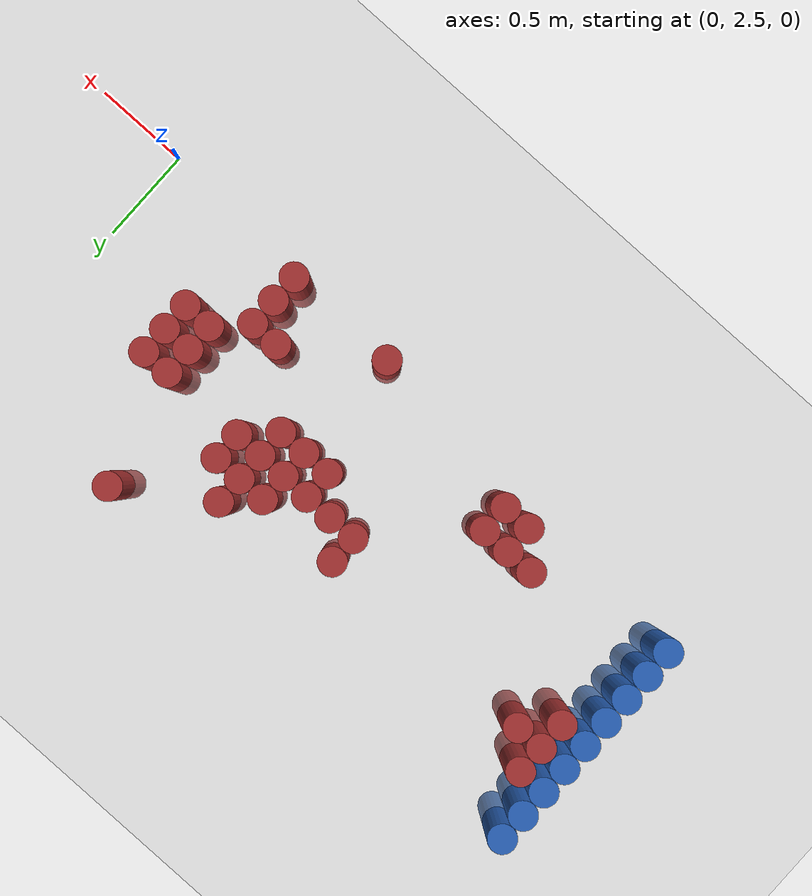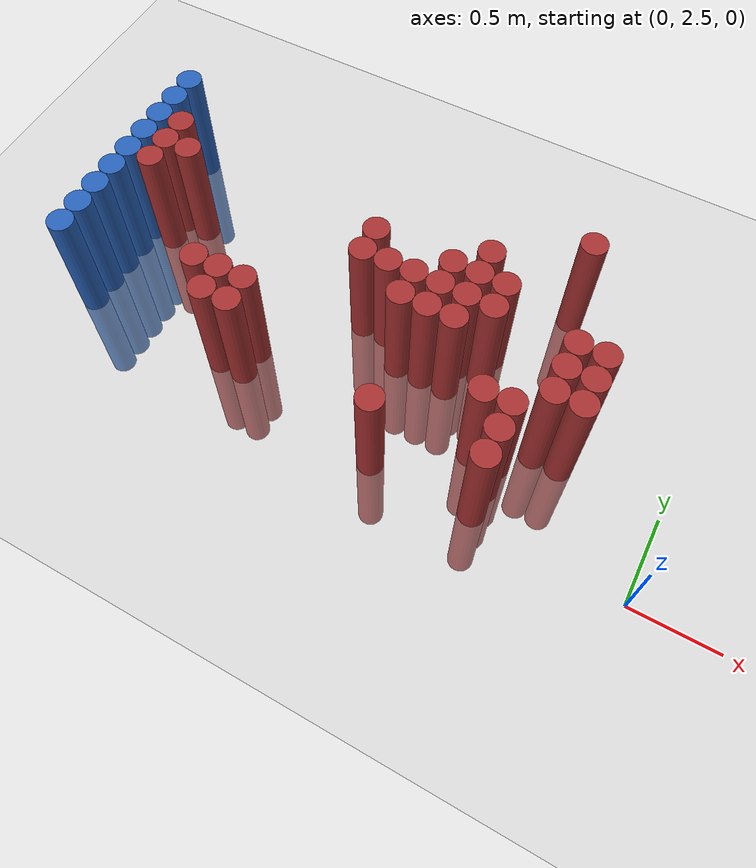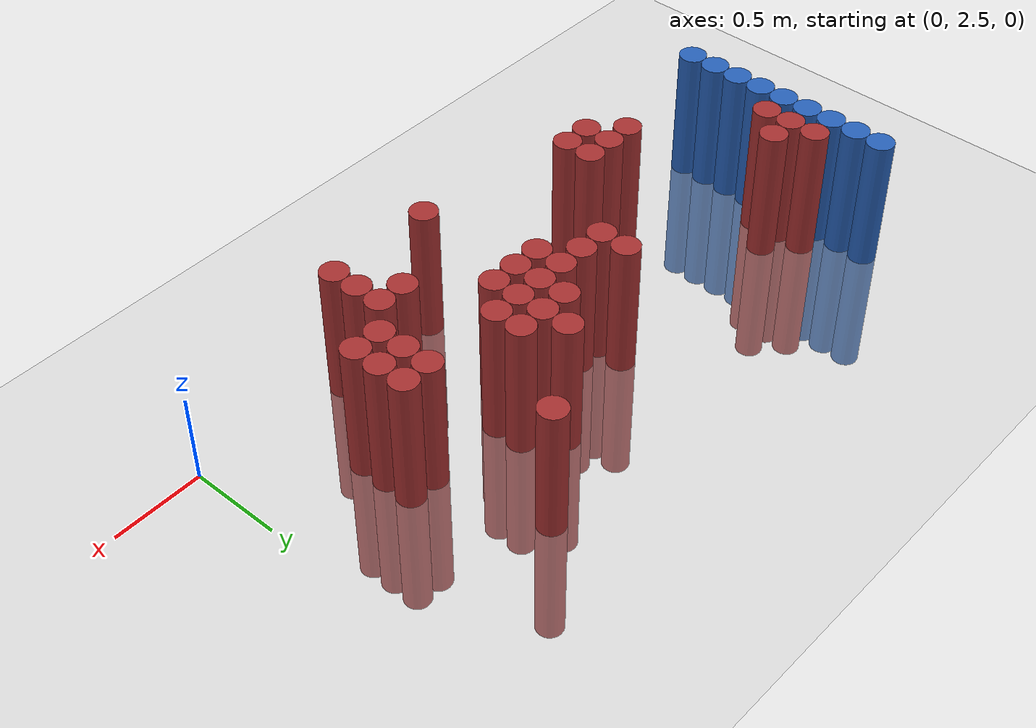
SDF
<sdf version="1.6">
 <world name="default">
  <model name="ground_plane">
   <static>1</static>
   <link name="link">
    <collision name="collision">
     <geometry><plane><normal>0 0 1</normal><size>100 100</size></plane></geometry>
     <surface><friction><ode><mu>100</mu><mu2>50</mu2></ode></friction></surface>
    </collision>
    <visual name="visual">
     <cast_shadows>0</cast_shadows>
     <geometry><plane><normal>0 0 1</normal><size>100 100</size></plane></geometry>
     <material>
      <script><uri>file://media/materials/scripts/gazebo.material</uri><name>Gazebo/Grey</name></script>
     </material>
    </visual>
   </link>
  </model>
  <model name="unit_cylinder_151">
   <static>1</static>
   <pose>-3.425000 2.725000 0.000000 0.000000 0.000000 0.000000</pose>
   <link name="link">
    <inertial>
     <mass>1</mass>
     <inertia><ixx>0.145833</ixx><ixy>0</ixy><ixz>0</ixz><iyy>0.145833</iyy><iyz>0</iyz><izz>0.125</izz></inertia>
    </inertial>
    <collision name="collision">
     <geometry><cylinder><radius>0.075000</radius><length>1.5</length></cylinder></geometry>
    </collision>
    <visual name="visual">
     <geometry><cylinder><radius>0.075000</radius><length>1.5</length></cylinder></geometry>
     <material>
      <ambient>0.152000 0.379000 0.720000 1</ambient>
      <diffuse>0.152000 0.379000 0.720000 1</diffuse>
     </material>
     <material>
      <script><name>Gazebo/Grey</name><uri>file://media/materials/scripts/gazebo.material</uri></script>
     </material>
    </visual>
   </link>
  </model>
  <model name="unit_cylinder_153">
   <static>1</static>
   <pose>-3.425000 2.875000 0.000000 0.000000 0.000000 0.000000</pose>
   <link name="link">
    <inertial>
     <mass>1</mass>
     <inertia><ixx>0.145833</ixx><ixy>0</ixy><ixz>0</ixz><iyy>0.145833</iyy><iyz>0</iyz><izz>0.125</izz></inertia>
    </inertial>
    <collision name="collision">
     <geometry><cylinder><radius>0.075000</radius><length>1.5</length></cylinder></geometry>
    </collision>
    <visual name="visual">
     <geometry><cylinder><radius>0.075000</radius><length>1.5</length></cylinder></geometry>
     <material>
      <ambient>0.152000 0.379000 0.720000 1</ambient>
      <diffuse>0.152000 0.379000 0.720000 1</diffuse>
     </material>
     <material>
      <script><name>Gazebo/Grey</name><uri>file://media/materials/scripts/gazebo.material</uri></script>
     </material>
    </visual>
   </link>
  </model>
  <model name="unit_cylinder_155">
   <static>1</static>
   <pose>-3.425000 3.025000 0.000000 0.000000 0.000000 0.000000</pose>
   <link name="link">
    <inertial>
     <mass>1</mass>
     <inertia><ixx>0.145833</ixx><ixy>0</ixy><ixz>0</ixz><iyy>0.145833</iyy><iyz>0</iyz><izz>0.125</izz></inertia>
    </inertial>
    <collision name="collision">
     <geometry><cylinder><radius>0.075000</radius><length>1.5</length></cylinder></geometry>
    </collision>
    <visual name="visual">
     <geometry><cylinder><radius>0.075000</radius><length>1.5</length></cylinder></geometry>
     <material>
      <ambient>0.152000 0.379000 0.720000 1</ambient>
      <diffuse>0.152000 0.379000 0.720000 1</diffuse>
     </material>
     <material>
      <script><name>Gazebo/Grey</name><uri>file://media/materials/scripts/gazebo.material</uri></script>
     </material>
    </visual>
   </link>
  </model>
  <model name="unit_cylinder_157">
   <static>1</static>
   <pose>-3.425000 3.175000 0.000000 0.000000 0.000000 0.000000</pose>
   <link name="link">
    <inertial>
     <mass>1</mass>
     <inertia><ixx>0.145833</ixx><ixy>0</ixy><ixz>0</ixz><iyy>0.145833</iyy><iyz>0</iyz><izz>0.125</izz></inertia>
    </inertial>
    <collision name="collision">
     <geometry><cylinder><radius>0.075000</radius><length>1.5</length></cylinder></geometry>
    </collision>
    <visual name="visual">
     <geometry><cylinder><radius>0.075000</radius><length>1.5</length></cylinder></geometry>
     <material>
      <ambient>0.152000 0.379000 0.720000 1</ambient>
      <diffuse>0.152000 0.379000 0.720000 1</diffuse>
     </material>
     <material>
      <script><name>Gazebo/Grey</name><uri>file://media/materials/scripts/gazebo.material</uri></script>
     </material>
    </visual>
   </link>
  </model>
  <model name="unit_cylinder_159">
   <static>1</static>
   <pose>-3.425000 3.325000 0.000000 0.000000 0.000000 0.000000</pose>
   <link name="link">
    <inertial>
     <mass>1</mass>
     <inertia><ixx>0.145833</ixx><ixy>0</ixy><ixz>0</ixz><iyy>0.145833</iyy><iyz>0</iyz><izz>0.125</izz></inertia>
    </inertial>
    <collision name="collision">
     <geometry><cylinder><radius>0.075000</radius><length>1.5</length></cylinder></geometry>
    </collision>
    <visual name="visual">
     <geometry><cylinder><radius>0.075000</radius><length>1.5</length></cylinder></geometry>
     <material>
      <ambient>0.152000 0.379000 0.720000 1</ambient>
      <diffuse>0.152000 0.379000 0.720000 1</diffuse>
     </material>
     <material>
      <script><name>Gazebo/Grey</name><uri>file://media/materials/scripts/gazebo.material</uri></script>
     </material>
    </visual>
   </link>
  </model>
  <model name="unit_cylinder_161">
   <static>1</static>
   <pose>-3.425000 3.475000 0.000000 0.000000 0.000000 0.000000</pose>
   <link name="link">
    <inertial>
     <mass>1</mass>
     <inertia><ixx>0.145833</ixx><ixy>0</ixy><ixz>0</ixz><iyy>0.145833</iyy><iyz>0</iyz><izz>0.125</izz></inertia>
    </inertial>
    <collision name="collision">
     <geometry><cylinder><radius>0.075000</radius><length>1.5</length></cylinder></geometry>
    </collision>
    <visual name="visual">
     <geometry><cylinder><radius>0.075000</radius><length>1.5</length></cylinder></geometry>
     <material>
      <ambient>0.152000 0.379000 0.720000 1</ambient>
      <diffuse>0.152000 0.379000 0.720000 1</diffuse>
     </material>
     <material>
      <script><name>Gazebo/Grey</name><uri>file://media/materials/scripts/gazebo.material</uri></script>
     </material>
    </visual>
   </link>
  </model>
  <model name="unit_cylinder_163">
   <static>1</static>
   <pose>-3.425000 3.625000 0.000000 0.000000 0.000000 0.000000</pose>
   <link name="link">
    <inertial>
     <mass>1</mass>
     <inertia><ixx>0.145833</ixx><ixy>0</ixy><ixz>0</ixz><iyy>0.145833</iyy><iyz>0</iyz><izz>0.125</izz></inertia>
    </inertial>
    <collision name="collision">
     <geometry><cylinder><radius>0.075000</radius><length>1.5</length></cylinder></geometry>
    </collision>
    <visual name="visual">
     <geometry><cylinder><radius>0.075000</radius><length>1.5</length></cylinder></geometry>
     <material>
      <ambient>0.152000 0.379000 0.720000 1</ambient>
      <diffuse>0.152000 0.379000 0.720000 1</diffuse>
     </material>
     <material>
      <script><name>Gazebo/Grey</name><uri>file://media/materials/scripts/gazebo.material</uri></script>
     </material>
    </visual>
   </link>
  </model>
  <model name="unit_cylinder_165">
   <static>1</static>
   <pose>-3.425000 3.775000 0.000000 0.000000 0.000000 0.000000</pose>
   <link name="link">
    <inertial>
     <mass>1</mass>
     <inertia><ixx>0.145833</ixx><ixy>0</ixy><ixz>0</ixz><iyy>0.145833</iyy><iyz>0</iyz><izz>0.125</izz></inertia>
    </inertial>
    <collision name="collision">
     <geometry><cylinder><radius>0.075000</radius><length>1.5</length></cylinder></geometry>
    </collision>
    <visual name="visual">
     <geometry><cylinder><radius>0.075000</radius><length>1.5</length></cylinder></geometry>
     <material>
      <ambient>0.152000 0.379000 0.720000 1</ambient>
      <diffuse>0.152000 0.379000 0.720000 1</diffuse>
     </material>
     <material>
      <script><name>Gazebo/Grey</name><uri>file://media/materials/scripts/gazebo.material</uri></script>
     </material>
    </visual>
   </link>
  </model>
  <model name="unit_cylinder_167">
   <static>1</static>
   <pose>-3.425000 3.925000 0.000000 0.000000 0.000000 0.000000</pose>
   <link name="link">
    <inertial>
     <mass>1</mass>
     <inertia><ixx>0.145833</ixx><ixy>0</ixy><ixz>0</ixz><iyy>0.145833</iyy><iyz>0</iyz><izz>0.125</izz></inertia>
    </inertial>
    <collision name="collision">
     <geometry><cylinder><radius>0.075000</radius><length>1.5</length></cylinder></geometry>
    </collision>
    <visual name="visual">
     <geometry><cylinder><radius>0.075000</radius><length>1.5</length></cylinder></geometry>
     <material>
      <ambient>0.152000 0.379000 0.720000 1</ambient>
      <diffuse>0.152000 0.379000 0.720000 1</diffuse>
     </material>
     <material>
      <script><name>Gazebo/Grey</name><uri>file://media/materials/scripts/gazebo.material</uri></script>
     </material>
    </visual>
   </link>
  </model>
  <model name="unit_cylinder_239">
   <static>1</static>
   <pose>-3.425000 2.725000 0.000000 0.000000 0.000000 0.000000</pose>
   <link name="link">
    <inertial>
     <mass>1</mass>
     <inertia><ixx>0.145833</ixx><ixy>0</ixy><ixz>0</ixz><iyy>0.145833</iyy><iyz>0</iyz><izz>0.125</izz></inertia>
    </inertial>
    <collision name="collision">
     <geometry><cylinder><radius>0.075000</radius><length>1.5</length></cylinder></geometry>
    </collision>
    <visual name="visual">
     <geometry><cylinder><radius>0.075000</radius><length>1.5</length></cylinder></geometry>
     <material>
      <ambient>0.152000 0.379000 0.720000 1</ambient>
      <diffuse>0.152000 0.379000 0.720000 1</diffuse>
     </material>
     <material>
      <script><name>Gazebo/Grey</name><uri>file://media/materials/scripts/gazebo.material</uri></script>
     </material>
    </visual>
   </link>
  </model>
  <model name="unit_cylinder_240">
   <static>1</static>
   <pose>-3.425000 2.875000 0.000000 0.000000 0.000000 0.000000</pose>
   <link name="link">
    <inertial>
     <mass>1</mass>
     <inertia><ixx>0.145833</ixx><ixy>0</ixy><ixz>0</ixz><iyy>0.145833</iyy><iyz>0</iyz><izz>0.125</izz></inertia>
    </inertial>
    <collision name="collision">
     <geometry><cylinder><radius>0.075000</radius><length>1.5</length></cylinder></geometry>
    </collision>
    <visual name="visual">
     <geometry><cylinder><radius>0.075000</radius><length>1.5</length></cylinder></geometry>
     <material>
      <ambient>0.152000 0.379000 0.720000 1</ambient>
      <diffuse>0.152000 0.379000 0.720000 1</diffuse>
     </material>
     <material>
      <script><name>Gazebo/Grey</name><uri>file://media/materials/scripts/gazebo.material</uri></script>
     </material>
    </visual>
   </link>
  </model>
  <model name="unit_cylinder_241">
   <static>1</static>
   <pose>-3.425000 3.025000 0.000000 0.000000 0.000000 0.000000</pose>
   <link name="link">
    <inertial>
     <mass>1</mass>
     <inertia><ixx>0.145833</ixx><ixy>0</ixy><ixz>0</ixz><iyy>0.145833</iyy><iyz>0</iyz><izz>0.125</izz></inertia>
    </inertial>
    <collision name="collision">
     <geometry><cylinder><radius>0.075000</radius><length>1.5</length></cylinder></geometry>
    </collision>
    <visual name="visual">
     <geometry><cylinder><radius>0.075000</radius><length>1.5</length></cylinder></geometry>
     <material>
      <ambient>0.152000 0.379000 0.720000 1</ambient>
      <diffuse>0.152000 0.379000 0.720000 1</diffuse>
     </material>
     <material>
      <script><name>Gazebo/Grey</name><uri>file://media/materials/scripts/gazebo.material</uri></script>
     </material>
    </visual>
   </link>
  </model>
  <model name="unit_cylinder_242">
   <static>1</static>
   <pose>-3.425000 3.175000 0.000000 0.000000 0.000000 0.000000</pose>
   <link name="link">
    <inertial>
     <mass>1</mass>
     <inertia><ixx>0.145833</ixx><ixy>0</ixy><ixz>0</ixz><iyy>0.145833</iyy><iyz>0</iyz><izz>0.125</izz></inertia>
    </inertial>
    <collision name="collision">
     <geometry><cylinder><radius>0.075000</radius><length>1.5</length></cylinder></geometry>
    </collision>
    <visual name="visual">
     <geometry><cylinder><radius>0.075000</radius><length>1.5</length></cylinder></geometry>
     <material>
      <ambient>0.152000 0.379000 0.720000 1</ambient>
      <diffuse>0.152000 0.379000 0.720000 1</diffuse>
     </material>
     <material>
      <script><name>Gazebo/Grey</name><uri>file://media/materials/scripts/gazebo.material</uri></script>
     </material>
    </visual>
   </link>
  </model>
  <model name="unit_cylinder_243">
   <static>1</static>
   <pose>-3.425000 3.325000 0.000000 0.000000 0.000000 0.000000</pose>
   <link name="link">
    <inertial>
     <mass>1</mass>
     <inertia><ixx>0.145833</ixx><ixy>0</ixy><ixz>0</ixz><iyy>0.145833</iyy><iyz>0</iyz><izz>0.125</izz></inertia>
    </inertial>
    <collision name="collision">
     <geometry><cylinder><radius>0.075000</radius><length>1.5</length></cylinder></geometry>
    </collision>
    <visual name="visual">
     <geometry><cylinder><radius>0.075000</radius><length>1.5</length></cylinder></geometry>
     <material>
      <ambient>0.152000 0.379000 0.720000 1</ambient>
      <diffuse>0.152000 0.379000 0.720000 1</diffuse>
     </material>
     <material>
      <script><name>Gazebo/Grey</name><uri>file://media/materials/scripts/gazebo.material</uri></script>
     </material>
    </visual>
   </link>
  </model>
  <model name="unit_cylinder_244">
   <static>1</static>
   <pose>-3.425000 3.475000 0.000000 0.000000 0.000000 0.000000</pose>
   <link name="link">
    <inertial>
     <mass>1</mass>
     <inertia><ixx>0.145833</ixx><ixy>0</ixy><ixz>0</ixz><iyy>0.145833</iyy><iyz>0</iyz><izz>0.125</izz></inertia>
    </inertial>
    <collision name="collision">
     <geometry><cylinder><radius>0.075000</radius><length>1.5</length></cylinder></geometry>
    </collision>
    <visual name="visual">
     <geometry><cylinder><radius>0.075000</radius><length>1.5</length></cylinder></geometry>
     <material>
      <ambient>0.152000 0.379000 0.720000 1</ambient>
      <diffuse>0.152000 0.379000 0.720000 1</diffuse>
     </material>
     <material>
      <script><name>Gazebo/Grey</name><uri>file://media/materials/scripts/gazebo.material</uri></script>
     </material>
    </visual>
   </link>
  </model>
  <model name="unit_cylinder_245">
   <static>1</static>
   <pose>-3.425000 3.625000 0.000000 0.000000 0.000000 0.000000</pose>
   <link name="link">
    <inertial>
     <mass>1</mass>
     <inertia><ixx>0.145833</ixx><ixy>0</ixy><ixz>0</ixz><iyy>0.145833</iyy><iyz>0</iyz><izz>0.125</izz></inertia>
    </inertial>
    <collision name="collision">
     <geometry><cylinder><radius>0.075000</radius><length>1.5</length></cylinder></geometry>
    </collision>
    <visual name="visual">
     <geometry><cylinder><radius>0.075000</radius><length>1.5</length></cylinder></geometry>
     <material>
      <ambient>0.152000 0.379000 0.720000 1</ambient>
      <diffuse>0.152000 0.379000 0.720000 1</diffuse>
     </material>
     <material>
      <script><name>Gazebo/Grey</name><uri>file://media/materials/scripts/gazebo.material</uri></script>
     </material>
    </visual>
   </link>
  </model>
  <model name="unit_cylinder_246">
   <static>1</static>
   <pose>-3.425000 3.775000 0.000000 0.000000 0.000000 0.000000</pose>
   <link name="link">
    <inertial>
     <mass>1</mass>
     <inertia><ixx>0.145833</ixx><ixy>0</ixy><ixz>0</ixz><iyy>0.145833</iyy><iyz>0</iyz><izz>0.125</izz></inertia>
    </inertial>
    <collision name="collision">
     <geometry><cylinder><radius>0.075000</radius><length>1.5</length></cylinder></geometry>
    </collision>
    <visual name="visual">
     <geometry><cylinder><radius>0.075000</radius><length>1.5</length></cylinder></geometry>
     <material>
      <ambient>0.152000 0.379000 0.720000 1</ambient>
      <diffuse>0.152000 0.379000 0.720000 1</diffuse>
     </material>
     <material>
      <script><name>Gazebo/Grey</name><uri>file://media/materials/scripts/gazebo.material</uri></script>
     </material>
    </visual>
   </link>
  </model>
  <model name="unit_cylinder_247">
   <static>1</static>
   <pose>-3.425000 3.925000 0.000000 0.000000 0.000000 0.000000</pose>
   <link name="link">
    <inertial>
     <mass>1</mass>
     <inertia><ixx>0.145833</ixx><ixy>0</ixy><ixz>0</ixz><iyy>0.145833</iyy><iyz>0</iyz><izz>0.125</izz></inertia>
    </inertial>
    <collision name="collision">
     <geometry><cylinder><radius>0.075000</radius><length>1.5</length></cylinder></geometry>
    </collision>
    <visual name="visual">
     <geometry><cylinder><radius>0.075000</radius><length>1.5</length></cylinder></geometry>
     <material>
      <ambient>0.152000 0.379000 0.720000 1</ambient>
      <diffuse>0.152000 0.379000 0.720000 1</diffuse>
     </material>
     <material>
      <script><name>Gazebo/Grey</name><uri>file://media/materials/scripts/gazebo.material</uri></script>
     </material>
    </visual>
   </link>
  </model>
  <model name="unit_cylinder_271">
   <static>1</static>
   <pose>-3.275000 3.325000 0.000000 0.000000 0.000000 0.000000</pose>
   <link name="link">
    <inertial>
     <mass>1</mass>
     <inertia><ixx>0.145833</ixx><ixy>0</ixy><ixz>0</ixz><iyy>0.145833</iyy><iyz>0</iyz><izz>0.125</izz></inertia>
    </inertial>
    <collision name="collision">
     <geometry><cylinder><radius>0.075000</radius><length>1.5</length></cylinder></geometry>
    </collision>
    <visual name="visual">
     <geometry><cylinder><radius>0.075000</radius><length>1.5</length></cylinder></geometry>
     <material>
      <ambient>0.648000 0.192000 0.192000 1</ambient>
      <diffuse>0.648000 0.192000 0.192000 1</diffuse>
     </material>
     <material>
      <script><name>Gazebo/Grey</name><uri>file://media/materials/scripts/gazebo.material</uri></script>
     </material>
    </visual>
   </link>
  </model>
  <model name="unit_cylinder_272">
   <static>1</static>
   <pose>-3.275000 3.475000 0.000000 0.000000 0.000000 0.000000</pose>
   <link name="link">
    <inertial>
     <mass>1</mass>
     <inertia><ixx>0.145833</ixx><ixy>0</ixy><ixz>0</ixz><iyy>0.145833</iyy><iyz>0</iyz><izz>0.125</izz></inertia>
    </inertial>
    <collision name="collision">
     <geometry><cylinder><radius>0.075000</radius><length>1.5</length></cylinder></geometry>
    </collision>
    <visual name="visual">
     <geometry><cylinder><radius>0.075000</radius><length>1.5</length></cylinder></geometry>
     <material>
      <ambient>0.648000 0.192000 0.192000 1</ambient>
      <diffuse>0.648000 0.192000 0.192000 1</diffuse>
     </material>
     <material>
      <script><name>Gazebo/Grey</name><uri>file://media/materials/scripts/gazebo.material</uri></script>
     </material>
    </visual>
   </link>
  </model>
  <model name="unit_cylinder_273">
   <static>1</static>
   <pose>-3.275000 3.625000 0.000000 0.000000 0.000000 0.000000</pose>
   <link name="link">
    <inertial>
     <mass>1</mass>
     <inertia><ixx>0.145833</ixx><ixy>0</ixy><ixz>0</ixz><iyy>0.145833</iyy><iyz>0</iyz><izz>0.125</izz></inertia>
    </inertial>
    <collision name="collision">
     <geometry><cylinder><radius>0.075000</radius><length>1.5</length></cylinder></geometry>
    </collision>
    <visual name="visual">
     <geometry><cylinder><radius>0.075000</radius><length>1.5</length></cylinder></geometry>
     <material>
      <ambient>0.648000 0.192000 0.192000 1</ambient>
      <diffuse>0.648000 0.192000 0.192000 1</diffuse>
     </material>
     <material>
      <script><name>Gazebo/Grey</name><uri>file://media/materials/scripts/gazebo.material</uri></script>
     </material>
    </visual>
   </link>
  </model>
  <model name="unit_cylinder_290">
   <static>1</static>
   <pose>-3.125000 3.475000 0.000000 0.000000 0.000000 0.000000</pose>
   <link name="link">
    <inertial>
     <mass>1</mass>
     <inertia><ixx>0.145833</ixx><ixy>0</ixy><ixz>0</ixz><iyy>0.145833</iyy><iyz>0</iyz><izz>0.125</izz></inertia>
    </inertial>
    <collision name="collision">
     <geometry><cylinder><radius>0.075000</radius><length>1.5</length></cylinder></geometry>
    </collision>
    <visual name="visual">
     <geometry><cylinder><radius>0.075000</radius><length>1.5</length></cylinder></geometry>
     <material>
      <ambient>0.648000 0.192000 0.192000 1</ambient>
      <diffuse>0.648000 0.192000 0.192000 1</diffuse>
     </material>
     <material>
      <script><name>Gazebo/Grey</name><uri>file://media/materials/scripts/gazebo.material</uri></script>
     </material>
    </visual>
   </link>
  </model>
  <model name="unit_cylinder_313">
   <static>1</static>
   <pose>-2.675000 2.875000 0.000000 0.000000 0.000000 0.000000</pose>
   <link name="link">
    <inertial>
     <mass>1</mass>
     <inertia><ixx>0.145833</ixx><ixy>0</ixy><ixz>0</ixz><iyy>0.145833</iyy><iyz>0</iyz><izz>0.125</izz></inertia>
    </inertial>
    <collision name="collision">
     <geometry><cylinder><radius>0.075000</radius><length>1.5</length></cylinder></geometry>
    </collision>
    <visual name="visual">
     <geometry><cylinder><radius>0.075000</radius><length>1.5</length></cylinder></geometry>
     <material>
      <ambient>0.648000 0.192000 0.192000 1</ambient>
      <diffuse>0.648000 0.192000 0.192000 1</diffuse>
     </material>
     <material>
      <script><name>Gazebo/Grey</name><uri>file://media/materials/scripts/gazebo.material</uri></script>
     </material>
    </visual>
   </link>
  </model>
  <model name="unit_cylinder_323">
   <static>1</static>
   <pose>-2.525000 2.725000 0.000000 0.000000 0.000000 0.000000</pose>
   <link name="link">
    <inertial>
     <mass>1</mass>
     <inertia><ixx>0.145833</ixx><ixy>0</ixy><ixz>0</ixz><iyy>0.145833</iyy><iyz>0</iyz><izz>0.125</izz></inertia>
    </inertial>
    <collision name="collision">
     <geometry><cylinder><radius>0.075000</radius><length>1.5</length></cylinder></geometry>
    </collision>
    <visual name="visual">
     <geometry><cylinder><radius>0.075000</radius><length>1.5</length></cylinder></geometry>
     <material>
      <ambient>0.648000 0.192000 0.192000 1</ambient>
      <diffuse>0.648000 0.192000 0.192000 1</diffuse>
     </material>
     <material>
      <script><name>Gazebo/Grey</name><uri>file://media/materials/scripts/gazebo.material</uri></script>
     </material>
    </visual>
   </link>
  </model>
  <model name="unit_cylinder_324">
   <static>1</static>
   <pose>-2.525000 2.875000 0.000000 0.000000 0.000000 0.000000</pose>
   <link name="link">
    <inertial>
     <mass>1</mass>
     <inertia><ixx>0.145833</ixx><ixy>0</ixy><ixz>0</ixz><iyy>0.145833</iyy><iyz>0</iyz><izz>0.125</izz></inertia>
    </inertial>
    <collision name="collision">
     <geometry><cylinder><radius>0.075000</radius><length>1.5</length></cylinder></geometry>
    </collision>
    <visual name="visual">
     <geometry><cylinder><radius>0.075000</radius><length>1.5</length></cylinder></geometry>
     <material>
      <ambient>0.648000 0.192000 0.192000 1</ambient>
      <diffuse>0.648000 0.192000 0.192000 1</diffuse>
     </material>
     <material>
      <script><name>Gazebo/Grey</name><uri>file://media/materials/scripts/gazebo.material</uri></script>
     </material>
    </visual>
   </link>
  </model>
  <model name="unit_cylinder_331">
   <static>1</static>
   <pose>-2.375000 2.725000 0.000000 0.000000 0.000000 0.000000</pose>
   <link name="link">
    <inertial>
     <mass>1</mass>
     <inertia><ixx>0.145833</ixx><ixy>0</ixy><ixz>0</ixz><iyy>0.145833</iyy><iyz>0</iyz><izz>0.125</izz></inertia>
    </inertial>
    <collision name="collision">
     <geometry><cylinder><radius>0.075000</radius><length>1.5</length></cylinder></geometry>
    </collision>
    <visual name="visual">
     <geometry><cylinder><radius>0.075000</radius><length>1.5</length></cylinder></geometry>
     <material>
      <ambient>0.648000 0.192000 0.192000 1</ambient>
      <diffuse>0.648000 0.192000 0.192000 1</diffuse>
     </material>
     <material>
      <script><name>Gazebo/Grey</name><uri>file://media/materials/scripts/gazebo.material</uri></script>
     </material>
    </visual>
   </link>
  </model>
  <model name="unit_cylinder_332">
   <static>1</static>
   <pose>-2.375000 2.875000 0.000000 0.000000 0.000000 0.000000</pose>
   <link name="link">
    <inertial>
     <mass>1</mass>
     <inertia><ixx>0.145833</ixx><ixy>0</ixy><ixz>0</ixz><iyy>0.145833</iyy><iyz>0</iyz><izz>0.125</izz></inertia>
    </inertial>
    <collision name="collision">
     <geometry><cylinder><radius>0.075000</radius><length>1.5</length></cylinder></geometry>
    </collision>
    <visual name="visual">
     <geometry><cylinder><radius>0.075000</radius><length>1.5</length></cylinder></geometry>
     <material>
      <ambient>0.648000 0.192000 0.192000 1</ambient>
      <diffuse>0.648000 0.192000 0.192000 1</diffuse>
     </material>
     <material>
      <script><name>Gazebo/Grey</name><uri>file://media/materials/scripts/gazebo.material</uri></script>
     </material>
    </visual>
   </link>
  </model>
  <model name="unit_cylinder_345">
   <static>1</static>
   <pose>-1.925000 3.325000 0.000000 0.000000 0.000000 0.000000</pose>
   <link name="link">
    <inertial>
     <mass>1</mass>
     <inertia><ixx>0.145833</ixx><ixy>0</ixy><ixz>0</ixz><iyy>0.145833</iyy><iyz>0</iyz><izz>0.125</izz></inertia>
    </inertial>
    <collision name="collision">
     <geometry><cylinder><radius>0.075000</radius><length>1.5</length></cylinder></geometry>
    </collision>
    <visual name="visual">
     <geometry><cylinder><radius>0.075000</radius><length>1.5</length></cylinder></geometry>
     <material>
      <ambient>0.648000 0.192000 0.192000 1</ambient>
      <diffuse>0.648000 0.192000 0.192000 1</diffuse>
     </material>
     <material>
      <script><name>Gazebo/Grey</name><uri>file://media/materials/scripts/gazebo.material</uri></script>
     </material>
    </visual>
   </link>
  </model>
  <model name="unit_cylinder_346">
   <static>1</static>
   <pose>-1.925000 3.475000 0.000000 0.000000 0.000000 0.000000</pose>
   <link name="link">
    <inertial>
     <mass>1</mass>
     <inertia><ixx>0.145833</ixx><ixy>0</ixy><ixz>0</ixz><iyy>0.145833</iyy><iyz>0</iyz><izz>0.125</izz></inertia>
    </inertial>
    <collision name="collision">
     <geometry><cylinder><radius>0.075000</radius><length>1.5</length></cylinder></geometry>
    </collision>
    <visual name="visual">
     <geometry><cylinder><radius>0.075000</radius><length>1.5</length></cylinder></geometry>
     <material>
      <ambient>0.648000 0.192000 0.192000 1</ambient>
      <diffuse>0.648000 0.192000 0.192000 1</diffuse>
     </material>
     <material>
      <script><name>Gazebo/Grey</name><uri>file://media/materials/scripts/gazebo.material</uri></script>
     </material>
    </visual>
   </link>
  </model>
  <model name="unit_cylinder_349">
   <static>1</static>
   <pose>-1.775000 3.325000 0.000000 0.000000 0.000000 0.000000</pose>
   <link name="link">
    <inertial>
     <mass>1</mass>
     <inertia><ixx>0.145833</ixx><ixy>0</ixy><ixz>0</ixz><iyy>0.145833</iyy><iyz>0</iyz><izz>0.125</izz></inertia>
    </inertial>
    <collision name="collision">
     <geometry><cylinder><radius>0.075000</radius><length>1.5</length></cylinder></geometry>
    </collision>
    <visual name="visual">
     <geometry><cylinder><radius>0.075000</radius><length>1.5</length></cylinder></geometry>
     <material>
      <ambient>0.648000 0.192000 0.192000 1</ambient>
      <diffuse>0.648000 0.192000 0.192000 1</diffuse>
     </material>
     <material>
      <script><name>Gazebo/Grey</name><uri>file://media/materials/scripts/gazebo.material</uri></script>
     </material>
    </visual>
   </link>
  </model>
  <model name="unit_cylinder_357">
   <static>1</static>
   <pose>-1.625000 3.175000 0.000000 0.000000 0.000000 0.000000</pose>
   <link name="link">
    <inertial>
     <mass>1</mass>
     <inertia><ixx>0.145833</ixx><ixy>0</ixy><ixz>0</ixz><iyy>0.145833</iyy><iyz>0</iyz><izz>0.125</izz></inertia>
    </inertial>
    <collision name="collision">
     <geometry><cylinder><radius>0.075000</radius><length>1.5</length></cylinder></geometry>
    </collision>
    <visual name="visual">
     <geometry><cylinder><radius>0.075000</radius><length>1.5</length></cylinder></geometry>
     <material>
      <ambient>0.648000 0.192000 0.192000 1</ambient>
      <diffuse>0.648000 0.192000 0.192000 1</diffuse>
     </material>
     <material>
      <script><name>Gazebo/Grey</name><uri>file://media/materials/scripts/gazebo.material</uri></script>
     </material>
    </visual>
   </link>
  </model>
  <model name="unit_cylinder_358">
   <static>1</static>
   <pose>-1.625000 3.325000 0.000000 0.000000 0.000000 0.000000</pose>
   <link name="link">
    <inertial>
     <mass>1</mass>
     <inertia><ixx>0.145833</ixx><ixy>0</ixy><ixz>0</ixz><iyy>0.145833</iyy><iyz>0</iyz><izz>0.125</izz></inertia>
    </inertial>
    <collision name="collision">
     <geometry><cylinder><radius>0.075000</radius><length>1.5</length></cylinder></geometry>
    </collision>
    <visual name="visual">
     <geometry><cylinder><radius>0.075000</radius><length>1.5</length></cylinder></geometry>
     <material>
      <ambient>0.648000 0.192000 0.192000 1</ambient>
      <diffuse>0.648000 0.192000 0.192000 1</diffuse>
     </material>
     <material>
      <script><name>Gazebo/Grey</name><uri>file://media/materials/scripts/gazebo.material</uri></script>
     </material>
    </visual>
   </link>
  </model>
  <model name="unit_cylinder_367">
   <static>1</static>
   <pose>-1.475000 2.575000 0.000000 0.000000 0.000000 0.000000</pose>
   <link name="link">
    <inertial>
     <mass>1</mass>
     <inertia><ixx>0.145833</ixx><ixy>0</ixy><ixz>0</ixz><iyy>0.145833</iyy><iyz>0</iyz><izz>0.125</izz></inertia>
    </inertial>
    <collision name="collision">
     <geometry><cylinder><radius>0.075000</radius><length>1.5</length></cylinder></geometry>
    </collision>
    <visual name="visual">
     <geometry><cylinder><radius>0.075000</radius><length>1.5</length></cylinder></geometry>
     <material>
      <ambient>0.648000 0.192000 0.192000 1</ambient>
      <diffuse>0.648000 0.192000 0.192000 1</diffuse>
     </material>
     <material>
      <script><name>Gazebo/Grey</name><uri>file://media/materials/scripts/gazebo.material</uri></script>
     </material>
    </visual>
   </link>
  </model>
  <model name="unit_cylinder_368">
   <static>1</static>
   <pose>-1.475000 3.175000 0.000000 0.000000 0.000000 0.000000</pose>
   <link name="link">
    <inertial>
     <mass>1</mass>
     <inertia><ixx>0.145833</ixx><ixy>0</ixy><ixz>0</ixz><iyy>0.145833</iyy><iyz>0</iyz><izz>0.125</izz></inertia>
    </inertial>
    <collision name="collision">
     <geometry><cylinder><radius>0.075000</radius><length>1.5</length></cylinder></geometry>
    </collision>
    <visual name="visual">
     <geometry><cylinder><radius>0.075000</radius><length>1.5</length></cylinder></geometry>
     <material>
      <ambient>0.648000 0.192000 0.192000 1</ambient>
      <diffuse>0.648000 0.192000 0.192000 1</diffuse>
     </material>
     <material>
      <script><name>Gazebo/Grey</name><uri>file://media/materials/scripts/gazebo.material</uri></script>
     </material>
    </visual>
   </link>
  </model>
  <model name="unit_cylinder_369">
   <static>1</static>
   <pose>-1.475000 3.325000 0.000000 0.000000 0.000000 0.000000</pose>
   <link name="link">
    <inertial>
     <mass>1</mass>
     <inertia><ixx>0.145833</ixx><ixy>0</ixy><ixz>0</ixz><iyy>0.145833</iyy><iyz>0</iyz><izz>0.125</izz></inertia>
    </inertial>
    <collision name="collision">
     <geometry><cylinder><radius>0.075000</radius><length>1.5</length></cylinder></geometry>
    </collision>
    <visual name="visual">
     <geometry><cylinder><radius>0.075000</radius><length>1.5</length></cylinder></geometry>
     <material>
      <ambient>0.648000 0.192000 0.192000 1</ambient>
      <diffuse>0.648000 0.192000 0.192000 1</diffuse>
     </material>
     <material>
      <script><name>Gazebo/Grey</name><uri>file://media/materials/scripts/gazebo.material</uri></script>
     </material>
    </visual>
   </link>
  </model>
  <model name="unit_cylinder_370">
   <static>1</static>
   <pose>-1.475000 3.475000 0.000000 0.000000 0.000000 0.000000</pose>
   <link name="link">
    <inertial>
     <mass>1</mass>
     <inertia><ixx>0.145833</ixx><ixy>0</ixy><ixz>0</ixz><iyy>0.145833</iyy><iyz>0</iyz><izz>0.125</izz></inertia>
    </inertial>
    <collision name="collision">
     <geometry><cylinder><radius>0.075000</radius><length>1.5</length></cylinder></geometry>
    </collision>
    <visual name="visual">
     <geometry><cylinder><radius>0.075000</radius><length>1.5</length></cylinder></geometry>
     <material>
      <ambient>0.648000 0.192000 0.192000 1</ambient>
      <diffuse>0.648000 0.192000 0.192000 1</diffuse>
     </material>
     <material>
      <script><name>Gazebo/Grey</name><uri>file://media/materials/scripts/gazebo.material</uri></script>
     </material>
    </visual>
   </link>
  </model>
  <model name="unit_cylinder_374">
   <static>1</static>
   <pose>-1.325000 3.175000 0.000000 0.000000 0.000000 0.000000</pose>
   <link name="link">
    <inertial>
     <mass>1</mass>
     <inertia><ixx>0.145833</ixx><ixy>0</ixy><ixz>0</ixz><iyy>0.145833</iyy><iyz>0</iyz><izz>0.125</izz></inertia>
    </inertial>
    <collision name="collision">
     <geometry><cylinder><radius>0.075000</radius><length>1.5</length></cylinder></geometry>
    </collision>
    <visual name="visual">
     <geometry><cylinder><radius>0.075000</radius><length>1.5</length></cylinder></geometry>
     <material>
      <ambient>0.648000 0.192000 0.192000 1</ambient>
      <diffuse>0.648000 0.192000 0.192000 1</diffuse>
     </material>
     <material>
      <script><name>Gazebo/Grey</name><uri>file://media/materials/scripts/gazebo.material</uri></script>
     </material>
    </visual>
   </link>
  </model>
  <model name="unit_cylinder_375">
   <static>1</static>
   <pose>-1.325000 3.325000 0.000000 0.000000 0.000000 0.000000</pose>
   <link name="link">
    <inertial>
     <mass>1</mass>
     <inertia><ixx>0.145833</ixx><ixy>0</ixy><ixz>0</ixz><iyy>0.145833</iyy><iyz>0</iyz><izz>0.125</izz></inertia>
    </inertial>
    <collision name="collision">
     <geometry><cylinder><radius>0.075000</radius><length>1.5</length></cylinder></geometry>
    </collision>
    <visual name="visual">
     <geometry><cylinder><radius>0.075000</radius><length>1.5</length></cylinder></geometry>
     <material>
      <ambient>0.648000 0.192000 0.192000 1</ambient>
      <diffuse>0.648000 0.192000 0.192000 1</diffuse>
     </material>
     <material>
      <script><name>Gazebo/Grey</name><uri>file://media/materials/scripts/gazebo.material</uri></script>
     </material>
    </visual>
   </link>
  </model>
  <model name="unit_cylinder_376">
   <static>1</static>
   <pose>-1.325000 3.475000 0.000000 0.000000 0.000000 0.000000</pose>
   <link name="link">
    <inertial>
     <mass>1</mass>
     <inertia><ixx>0.145833</ixx><ixy>0</ixy><ixz>0</ixz><iyy>0.145833</iyy><iyz>0</iyz><izz>0.125</izz></inertia>
    </inertial>
    <collision name="collision">
     <geometry><cylinder><radius>0.075000</radius><length>1.5</length></cylinder></geometry>
    </collision>
    <visual name="visual">
     <geometry><cylinder><radius>0.075000</radius><length>1.5</length></cylinder></geometry>
     <material>
      <ambient>0.648000 0.192000 0.192000 1</ambient>
      <diffuse>0.648000 0.192000 0.192000 1</diffuse>
     </material>
     <material>
      <script><name>Gazebo/Grey</name><uri>file://media/materials/scripts/gazebo.material</uri></script>
     </material>
    </visual>
   </link>
  </model>
  <model name="unit_cylinder_377">
   <static>1</static>
   <pose>-1.325000 3.625000 0.000000 0.000000 0.000000 0.000000</pose>
   <link name="link">
    <inertial>
     <mass>1</mass>
     <inertia><ixx>0.145833</ixx><ixy>0</ixy><ixz>0</ixz><iyy>0.145833</iyy><iyz>0</iyz><izz>0.125</izz></inertia>
    </inertial>
    <collision name="collision">
     <geometry><cylinder><radius>0.075000</radius><length>1.5</length></cylinder></geometry>
    </collision>
    <visual name="visual">
     <geometry><cylinder><radius>0.075000</radius><length>1.5</length></cylinder></geometry>
     <material>
      <ambient>0.648000 0.192000 0.192000 1</ambient>
      <diffuse>0.648000 0.192000 0.192000 1</diffuse>
     </material>
     <material>
      <script><name>Gazebo/Grey</name><uri>file://media/materials/scripts/gazebo.material</uri></script>
     </material>
    </visual>
   </link>
  </model>
  <model name="unit_cylinder_379">
   <static>1</static>
   <pose>-1.175000 3.325000 0.000000 0.000000 0.000000 0.000000</pose>
   <link name="link">
    <inertial>
     <mass>1</mass>
     <inertia><ixx>0.145833</ixx><ixy>0</ixy><ixz>0</ixz><iyy>0.145833</iyy><iyz>0</iyz><izz>0.125</izz></inertia>
    </inertial>
    <collision name="collision">
     <geometry><cylinder><radius>0.075000</radius><length>1.5</length></cylinder></geometry>
    </collision>
    <visual name="visual">
     <geometry><cylinder><radius>0.075000</radius><length>1.5</length></cylinder></geometry>
     <material>
      <ambient>0.648000 0.192000 0.192000 1</ambient>
      <diffuse>0.648000 0.192000 0.192000 1</diffuse>
     </material>
     <material>
      <script><name>Gazebo/Grey</name><uri>file://media/materials/scripts/gazebo.material</uri></script>
     </material>
    </visual>
   </link>
  </model>
  <model name="unit_cylinder_380">
   <static>1</static>
   <pose>-1.175000 3.475000 0.000000 0.000000 0.000000 0.000000</pose>
   <link name="link">
    <inertial>
     <mass>1</mass>
     <inertia><ixx>0.145833</ixx><ixy>0</ixy><ixz>0</ixz><iyy>0.145833</iyy><iyz>0</iyz><izz>0.125</izz></inertia>
    </inertial>
    <collision name="collision">
     <geometry><cylinder><radius>0.075000</radius><length>1.5</length></cylinder></geometry>
    </collision>
    <visual name="visual">
     <geometry><cylinder><radius>0.075000</radius><length>1.5</length></cylinder></geometry>
     <material>
      <ambient>0.648000 0.192000 0.192000 1</ambient>
      <diffuse>0.648000 0.192000 0.192000 1</diffuse>
     </material>
     <material>
      <script><name>Gazebo/Grey</name><uri>file://media/materials/scripts/gazebo.material</uri></script>
     </material>
    </visual>
   </link>
  </model>
  <model name="unit_cylinder_388">
   <static>1</static>
   <pose>-1.025000 2.875000 0.000000 0.000000 0.000000 0.000000</pose>
   <link name="link">
    <inertial>
     <mass>1</mass>
     <inertia><ixx>0.145833</ixx><ixy>0</ixy><ixz>0</ixz><iyy>0.145833</iyy><iyz>0</iyz><izz>0.125</izz></inertia>
    </inertial>
    <collision name="collision">
     <geometry><cylinder><radius>0.075000</radius><length>1.5</length></cylinder></geometry>
    </collision>
    <visual name="visual">
     <geometry><cylinder><radius>0.075000</radius><length>1.5</length></cylinder></geometry>
     <material>
      <ambient>0.648000 0.192000 0.192000 1</ambient>
      <diffuse>0.648000 0.192000 0.192000 1</diffuse>
     </material>
     <material>
      <script><name>Gazebo/Grey</name><uri>file://media/materials/scripts/gazebo.material</uri></script>
     </material>
    </visual>
   </link>
  </model>
  <model name="unit_cylinder_399">
   <static>1</static>
   <pose>-0.875000 2.575000 0.000000 0.000000 0.000000 0.000000</pose>
   <link name="link">
    <inertial>
     <mass>1</mass>
     <inertia><ixx>0.145833</ixx><ixy>0</ixy><ixz>0</ixz><iyy>0.145833</iyy><iyz>0</iyz><izz>0.125</izz></inertia>
    </inertial>
    <collision name="collision">
     <geometry><cylinder><radius>0.075000</radius><length>1.5</length></cylinder></geometry>
    </collision>
    <visual name="visual">
     <geometry><cylinder><radius>0.075000</radius><length>1.5</length></cylinder></geometry>
     <material>
      <ambient>0.648000 0.192000 0.192000 1</ambient>
      <diffuse>0.648000 0.192000 0.192000 1</diffuse>
     </material>
     <material>
      <script><name>Gazebo/Grey</name><uri>file://media/materials/scripts/gazebo.material</uri></script>
     </material>
    </visual>
   </link>
  </model>
  <model name="unit_cylinder_400">
   <static>1</static>
   <pose>-0.875000 2.725000 0.000000 0.000000 0.000000 0.000000</pose>
   <link name="link">
    <inertial>
     <mass>1</mass>
     <inertia><ixx>0.145833</ixx><ixy>0</ixy><ixz>0</ixz><iyy>0.145833</iyy><iyz>0</iyz><izz>0.125</izz></inertia>
    </inertial>
    <collision name="collision">
     <geometry><cylinder><radius>0.075000</radius><length>1.5</length></cylinder></geometry>
    </collision>
    <visual name="visual">
     <geometry><cylinder><radius>0.075000</radius><length>1.5</length></cylinder></geometry>
     <material>
      <ambient>0.648000 0.192000 0.192000 1</ambient>
      <diffuse>0.648000 0.192000 0.192000 1</diffuse>
     </material>
     <material>
      <script><name>Gazebo/Grey</name><uri>file://media/materials/scripts/gazebo.material</uri></script>
     </material>
    </visual>
   </link>
  </model>
  <model name="unit_cylinder_401">
   <static>1</static>
   <pose>-0.875000 2.875000 0.000000 0.000000 0.000000 0.000000</pose>
   <link name="link">
    <inertial>
     <mass>1</mass>
     <inertia><ixx>0.145833</ixx><ixy>0</ixy><ixz>0</ixz><iyy>0.145833</iyy><iyz>0</iyz><izz>0.125</izz></inertia>
    </inertial>
    <collision name="collision">
     <geometry><cylinder><radius>0.075000</radius><length>1.5</length></cylinder></geometry>
    </collision>
    <visual name="visual">
     <geometry><cylinder><radius>0.075000</radius><length>1.5</length></cylinder></geometry>
     <material>
      <ambient>0.648000 0.192000 0.192000 1</ambient>
      <diffuse>0.648000 0.192000 0.192000 1</diffuse>
     </material>
     <material>
      <script><name>Gazebo/Grey</name><uri>file://media/materials/scripts/gazebo.material</uri></script>
     </material>
    </visual>
   </link>
  </model>
  <model name="unit_cylinder_402">
   <static>1</static>
   <pose>-0.875000 3.925000 0.000000 0.000000 0.000000 0.000000</pose>
   <link name="link">
    <inertial>
     <mass>1</mass>
     <inertia><ixx>0.145833</ixx><ixy>0</ixy><ixz>0</ixz><iyy>0.145833</iyy><iyz>0</iyz><izz>0.125</izz></inertia>
    </inertial>
    <collision name="collision">
     <geometry><cylinder><radius>0.075000</radius><length>1.5</length></cylinder></geometry>
    </collision>
    <visual name="visual">
     <geometry><cylinder><radius>0.075000</radius><length>1.5</length></cylinder></geometry>
     <material>
      <ambient>0.648000 0.192000 0.192000 1</ambient>
      <diffuse>0.648000 0.192000 0.192000 1</diffuse>
     </material>
     <material>
      <script><name>Gazebo/Grey</name><uri>file://media/materials/scripts/gazebo.material</uri></script>
     </material>
    </visual>
   </link>
  </model>
  <model name="unit_cylinder_411">
   <static>1</static>
   <pose>-0.725000 3.025000 0.000000 0.000000 0.000000 0.000000</pose>
   <link name="link">
    <inertial>
     <mass>1</mass>
     <inertia><ixx>0.145833</ixx><ixy>0</ixy><ixz>0</ixz><iyy>0.145833</iyy><iyz>0</iyz><izz>0.125</izz></inertia>
    </inertial>
    <collision name="collision">
     <geometry><cylinder><radius>0.075000</radius><length>1.5</length></cylinder></geometry>
    </collision>
    <visual name="visual">
     <geometry><cylinder><radius>0.075000</radius><length>1.5</length></cylinder></geometry>
     <material>
      <ambient>0.648000 0.192000 0.192000 1</ambient>
      <diffuse>0.648000 0.192000 0.192000 1</diffuse>
     </material>
     <material>
      <script><name>Gazebo/Grey</name><uri>file://media/materials/scripts/gazebo.material</uri></script>
     </material>
    </visual>
   </link>
  </model>
  <model name="unit_cylinder_412">
   <static>1</static>
   <pose>-0.725000 3.175000 0.000000 0.000000 0.000000 0.000000</pose>
   <link name="link">
    <inertial>
     <mass>1</mass>
     <inertia><ixx>0.145833</ixx><ixy>0</ixy><ixz>0</ixz><iyy>0.145833</iyy><iyz>0</iyz><izz>0.125</izz></inertia>
    </inertial>
    <collision name="collision">
     <geometry><cylinder><radius>0.075000</radius><length>1.5</length></cylinder></geometry>
    </collision>
    <visual name="visual">
     <geometry><cylinder><radius>0.075000</radius><length>1.5</length></cylinder></geometry>
     <material>
      <ambient>0.648000 0.192000 0.192000 1</ambient>
      <diffuse>0.648000 0.192000 0.192000 1</diffuse>
     </material>
     <material>
      <script><name>Gazebo/Grey</name><uri>file://media/materials/scripts/gazebo.material</uri></script>
     </material>
    </visual>
   </link>
  </model>
  <model name="unit_cylinder_413">
   <static>1</static>
   <pose>-0.725000 3.325000 0.000000 0.000000 0.000000 0.000000</pose>
   <link name="link">
    <inertial>
     <mass>1</mass>
     <inertia><ixx>0.145833</ixx><ixy>0</ixy><ixz>0</ixz><iyy>0.145833</iyy><iyz>0</iyz><izz>0.125</izz></inertia>
    </inertial>
    <collision name="collision">
     <geometry><cylinder><radius>0.075000</radius><length>1.5</length></cylinder></geometry>
    </collision>
    <visual name="visual">
     <geometry><cylinder><radius>0.075000</radius><length>1.5</length></cylinder></geometry>
     <material>
      <ambient>0.648000 0.192000 0.192000 1</ambient>
      <diffuse>0.648000 0.192000 0.192000 1</diffuse>
     </material>
     <material>
      <script><name>Gazebo/Grey</name><uri>file://media/materials/scripts/gazebo.material</uri></script>
     </material>
    </visual>
   </link>
  </model>
  <model name="unit_cylinder_420">
   <static>1</static>
   <pose>-0.575000 3.025000 0.000000 0.000000 0.000000 0.000000</pose>
   <link name="link">
    <inertial>
     <mass>1</mass>
     <inertia><ixx>0.145833</ixx><ixy>0</ixy><ixz>0</ixz><iyy>0.145833</iyy><iyz>0</iyz><izz>0.125</izz></inertia>
    </inertial>
    <collision name="collision">
     <geometry><cylinder><radius>0.075000</radius><length>1.5</length></cylinder></geometry>
    </collision>
    <visual name="visual">
     <geometry><cylinder><radius>0.075000</radius><length>1.5</length></cylinder></geometry>
     <material>
      <ambient>0.648000 0.192000 0.192000 1</ambient>
      <diffuse>0.648000 0.192000 0.192000 1</diffuse>
     </material>
     <material>
      <script><name>Gazebo/Grey</name><uri>file://media/materials/scripts/gazebo.material</uri></script>
     </material>
    </visual>
   </link>
  </model>
  <model name="unit_cylinder_421">
   <static>1</static>
   <pose>-0.575000 3.175000 0.000000 0.000000 0.000000 0.000000</pose>
   <link name="link">
    <inertial>
     <mass>1</mass>
     <inertia><ixx>0.145833</ixx><ixy>0</ixy><ixz>0</ixz><iyy>0.145833</iyy><iyz>0</iyz><izz>0.125</izz></inertia>
    </inertial>
    <collision name="collision">
     <geometry><cylinder><radius>0.075000</radius><length>1.5</length></cylinder></geometry>
    </collision>
    <visual name="visual">
     <geometry><cylinder><radius>0.075000</radius><length>1.5</length></cylinder></geometry>
     <material>
      <ambient>0.648000 0.192000 0.192000 1</ambient>
      <diffuse>0.648000 0.192000 0.192000 1</diffuse>
     </material>
     <material>
      <script><name>Gazebo/Grey</name><uri>file://media/materials/scripts/gazebo.material</uri></script>
     </material>
    </visual>
   </link>
  </model>
  <model name="unit_cylinder_422">
   <static>1</static>
   <pose>-0.575000 3.325000 0.000000 0.000000 0.000000 0.000000</pose>
   <link name="link">
    <inertial>
     <mass>1</mass>
     <inertia><ixx>0.145833</ixx><ixy>0</ixy><ixz>0</ixz><iyy>0.145833</iyy><iyz>0</iyz><izz>0.125</izz></inertia>
    </inertial>
    <collision name="collision">
     <geometry><cylinder><radius>0.075000</radius><length>1.5</length></cylinder></geometry>
    </collision>
    <visual name="visual">
     <geometry><cylinder><radius>0.075000</radius><length>1.5</length></cylinder></geometry>
     <material>
      <ambient>0.648000 0.192000 0.192000 1</ambient>
      <diffuse>0.648000 0.192000 0.192000 1</diffuse>
     </material>
     <material>
      <script><name>Gazebo/Grey</name><uri>file://media/materials/scripts/gazebo.material</uri></script>
     </material>
    </visual>
   </link>
  </model>
 </world>
</sdf>
